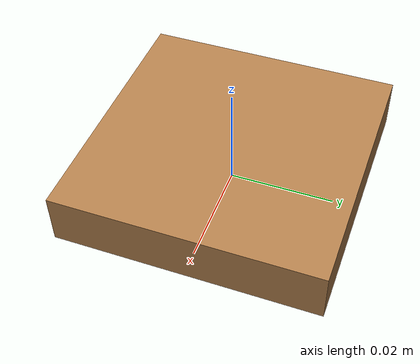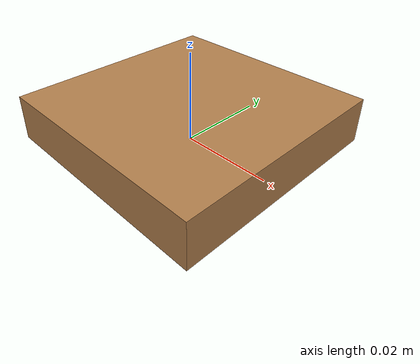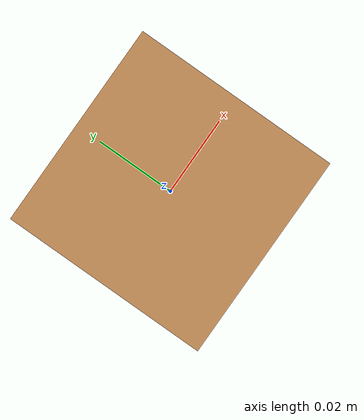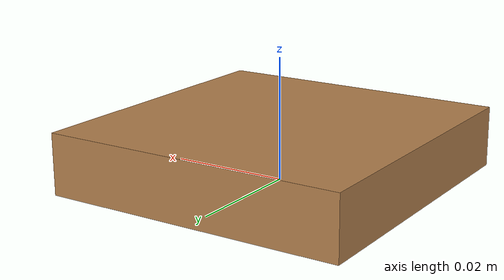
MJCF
<mujoco>
    <compiler angle="radian" inertiafromgeom="auto"/>

    <asset>
        <texture file="../textures/table_light_wood.png" type="2d" name="tex-wood"/>
        <material name="wood_material" reflectance="0.3" shininess="0.2" specular="0.1" texrepeat="1 1" texture="tex-wood" texuniform="true"/>
    </asset>

    <worldbody>
        <body pos="0 0 0.005">
            <body name="object">

                <inertial pos="0 0 0" mass="0.1" diaginertia="0.0005 0.0005 0.00005"/>

                <geom type="box" size="0.025 0.025 0.005"
                      material="wood_material"
                      group="0"
                      friction="0.8 0.3 0.1"
                      solimp="0.998 0.998 0.001"
                      solref="0.001 1"/>

                <geom type="box" size="0.025 0.025 0.005"
                      material="wood_material"
                      group="1"
                      conaffinity="0"
                      contype="0"/>
            </body>

            <site rgba="0 0 0 0" size="0.0025" pos="0 0 -0.005" name="bottom_site" />
            <site rgba="0 0 0 0" size="0.0025" pos="0 0 0.005" name="top_site" />
            <site rgba="0 0 0 0" size="0.0025" pos="0.025 0 0" name="horizontal_radius_site" />
        </body>
    </worldbody>
</mujoco>
